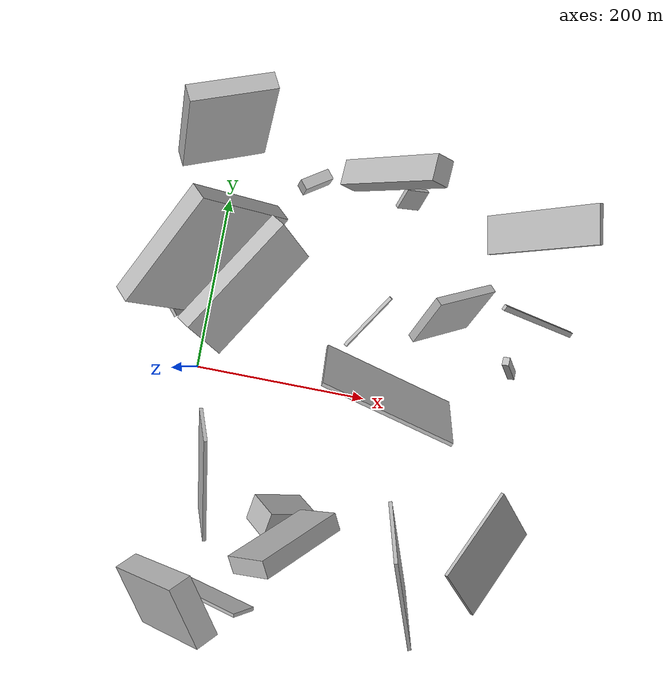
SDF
<sdf version="1.6">
 <world name="default">
  <scene>
   <sky><clouds><speed>12</speed></clouds></sky>
   <ambient>0.4 0.4 0.4 1</ambient>
   <background>0.7 0.7 0.7 1</background>
   <shadows>1</shadows>
  </scene>
  <gravity>0 0 -9.8066</gravity>
  <magnetic_field>6e-06 2.3e-05 -4.2e-05</magnetic_field>
  <physics default="0" name="default_physics" type="ode">
   <ode>
    <solver>
     <type>quick</type>
     <iters>10</iters>
     <sor>1.0</sor>
     <use_dynamic_moi_rescaling>0</use_dynamic_moi_rescaling>
    </solver>
    <constraints>
     <cfm>0</cfm>
     <erp>0.2</erp>
     <contact_max_correcting_vel>100</contact_max_correcting_vel>
     <contact_surface_layer>0.001</contact_surface_layer>
    </constraints>
   </ode>
   <max_step_size>0.004</max_step_size>
   <real_time_factor>1</real_time_factor>
   <real_time_update_rate>250</real_time_update_rate>
  </physics>
  <light name="sun" type="directional">
   <pose>0 0 10 0 0 0</pose>
   <diffuse>0.8 0.8 0.8 1</diffuse>
   <specular>0.2 0.2 0.2 1</specular>
   <attenuation>
    <range>1000</range>
    <constant>0.9</constant>
    <linear>0.01</linear>
    <quadratic>0.001</quadratic>
   </attenuation>
   <direction>-0.5 0.1 -0.9</direction>
  </light>
  <model name="building_1">
   <static>0</static>
   <pose>393.5238201656519 -93.99431812787392 53.458603788070654 1.0447301016938364 -0.7299674863057137 -0.10625331334162981</pose>
   <link name="link">
    <gravity>0</gravity>
    <pose>0 0 58.0 0 0 0</pose>
    <collision name="collision"><geometry><box><size>4 82 116</size></box></geometry></collision>
    <visual name="visual">
     <cast_shadows>0</cast_shadows>
     <geometry><box><size>4 82 116</size></box></geometry>
     <material>
      <script>
       <uri>model://HANNAS_wall/materials/scripts</uri>
       <uri>model://HANNAS_wall/materials/textures</uri>
       <name>vrc/HANNAS_wall</name>
      </script>
     </material>
    </visual>
   </link>
  </model>
  <model name="building_2">
   <static>0</static>
   <pose>177.61893647534248 -139.4808100626206 78.51546065734176 0.8027093278689477 0.24067545804543655 -1.1084365847787494</pose>
   <link name="link">
    <gravity>0</gravity>
    <pose>0 0 57.0 0 0 0</pose>
    <collision name="collision"><geometry><box><size>21 56 114</size></box></geometry></collision>
    <visual name="visual">
     <cast_shadows>0</cast_shadows>
     <geometry><box><size>21 56 114</size></box></geometry>
     <material>
      <script>
       <uri>model://HANNAS_wall/materials/scripts</uri>
       <uri>model://HANNAS_wall/materials/textures</uri>
       <name>vrc/HANNAS_wall</name>
      </script>
     </material>
    </visual>
   </link>
  </model>
  <model name="building_3">
   <static>0</static>
   <pose>61.09733466161079 88.85671302887441 53.08428835520806 -0.05405717945496297 -0.3993710386605618 -0.5282730979869001</pose>
   <link name="link">
    <gravity>0</gravity>
    <pose>0 0 46.0 0 0 0</pose>
    <collision name="collision"><geometry><box><size>18 150 92</size></box></geometry></collision>
    <visual name="visual">
     <cast_shadows>0</cast_shadows>
     <geometry><box><size>18 150 92</size></box></geometry>
     <material>
      <script>
       <uri>model://HANNAS_wall/materials/scripts</uri>
       <uri>model://HANNAS_wall/materials/textures</uri>
       <name>vrc/HANNAS_wall</name>
      </script>
     </material>
    </visual>
   </link>
  </model>
  <model name="building_4">
   <static>0</static>
   <pose>359.36402718857005 72.83760184738425 22.97564581771593 1.1834906884823053 -0.35020370209648016 0.07823638142976283</pose>
   <link name="link">
    <gravity>0</gravity>
    <pose>0 0 5.0 0 0 0</pose>
    <collision name="collision"><geometry><box><size>8 41 10</size></box></geometry></collision>
    <visual name="visual">
     <cast_shadows>0</cast_shadows>
     <geometry><box><size>8 41 10</size></box></geometry>
     <material>
      <script>
       <uri>model://HANNAS_wall/materials/scripts</uri>
       <uri>model://HANNAS_wall/materials/textures</uri>
       <name>vrc/HANNAS_wall</name>
      </script>
     </material>
    </visual>
   </link>
  </model>
  <model name="building_5">
   <static>0</static>
   <pose>131.06783888025274 -163.36181456635404 42.084050973603084 1.1671608078660738 -0.6442149230083735 -3.056047900271807</pose>
   <link name="link">
    <gravity>0</gravity>
    <pose>0 0 16.0 0 0 0</pose>
    <collision name="collision"><geometry><box><size>62 42 32</size></box></geometry></collision>
    <visual name="visual">
     <cast_shadows>0</cast_shadows>
     <geometry><box><size>62 42 32</size></box></geometry>
     <material>
      <script>
       <uri>model://HANNAS_wall/materials/scripts</uri>
       <uri>model://HANNAS_wall/materials/textures</uri>
       <name>vrc/HANNAS_wall</name>
      </script>
     </material>
    </visual>
   </link>
  </model>
  <model name="building_6">
   <static>0</static>
   <pose>33.29285495676003 -98.70770049676675 79.09219236129624 0.6743732023531644 0.20492002614628638 0.24262603572285132</pose>
   <link name="link">
    <gravity>0</gravity>
    <pose>0 0 27.0 0 0 0</pose>
    <collision name="collision"><geometry><box><size>4 150 54</size></box></geometry></collision>
    <visual name="visual">
     <cast_shadows>0</cast_shadows>
     <geometry><box><size>4 150 54</size></box></geometry>
     <material>
      <script>
       <uri>model://HANNAS_wall/materials/scripts</uri>
       <uri>model://HANNAS_wall/materials/textures</uri>
       <name>vrc/HANNAS_wall</name>
      </script>
     </material>
    </visual>
   </link>
  </model>
  <model name="building_7">
   <static>0</static>
   <pose>-47.69244283869683 81.45219014418502 24.970885549038904 1.1037709544551486 -0.08679318192986515 2.2447337656884567</pose>
   <link name="link">
    <gravity>0</gravity>
    <pose>0 0 2.0 0 0 0</pose>
    <collision name="collision"><geometry><box><size>63 30 4</size></box></geometry></collision>
    <visual name="visual">
     <cast_shadows>0</cast_shadows>
     <geometry><box><size>63 30 4</size></box></geometry>
     <material>
      <script>
       <uri>model://HANNAS_wall/materials/scripts</uri>
       <uri>model://HANNAS_wall/materials/textures</uri>
       <name>vrc/HANNAS_wall</name>
      </script>
     </material>
    </visual>
   </link>
  </model>
  <model name="building_8">
   <static>0</static>
   <pose>-12.022587815919202 134.08475868832863 95.88349849979352 1.0562672100228796 -0.40784770964066724 1.0384985679055254</pose>
   <link name="link">
    <gravity>0</gravity>
    <pose>0 0 11.5 0 0 0</pose>
    <collision name="collision"><geometry><box><size>150 135 23</size></box></geometry></collision>
    <visual name="visual">
     <cast_shadows>0</cast_shadows>
     <geometry><box><size>150 135 23</size></box></geometry>
     <material>
      <script>
       <uri>model://HANNAS_wall/materials/scripts</uri>
       <uri>model://HANNAS_wall/materials/textures</uri>
       <name>vrc/HANNAS_wall</name>
      </script>
     </material>
    </visual>
   </link>
  </model>
  <model name="building_9">
   <static>0</static>
   <pose>78.14960656894606 -240.44404828380712 75.1698702132758 0.29804400937771536 -0.8594099150068708 0.012102523835032922</pose>
   <link name="link">
    <gravity>0</gravity>
    <pose>0 0 13.0 0 0 0</pose>
    <collision name="collision"><geometry><box><size>147 4 26</size></box></geometry></collision>
    <visual name="visual">
     <cast_shadows>0</cast_shadows>
     <geometry><box><size>147 4 26</size></box></geometry>
     <material>
      <script>
       <uri>model://HANNAS_wall/materials/scripts</uri>
       <uri>model://HANNAS_wall/materials/textures</uri>
       <name>vrc/HANNAS_wall</name>
      </script>
     </material>
    </visual>
   </link>
  </model>
  <model name="building_10">
   <static>0</static>
   <pose>266.6748798771041 -149.53081683576752 97.49238620556659 0.7105948405681306 -0.044421995844935204 0.3164272505038065</pose>
   <link name="link">
    <gravity>0</gravity>
    <pose>0 0 42.5 0 0 0</pose>
    <collision name="collision"><geometry><box><size>4 148 85</size></box></geometry></collision>
    <visual name="visual">
     <cast_shadows>0</cast_shadows>
     <geometry><box><size>4 148 85</size></box></geometry>
     <material>
      <script>
       <uri>model://HANNAS_wall/materials/scripts</uri>
       <uri>model://HANNAS_wall/materials/textures</uri>
       <name>vrc/HANNAS_wall</name>
      </script>
     </material>
    </visual>
   </link>
  </model>
  <model name="building_11">
   <static>0</static>
   <pose>220.91431172988422 34.166092359952614 94.23166458552684 0.15838265170610463 -0.36681517693569465 1.2653875054369426</pose>
   <link name="link">
    <gravity>0</gravity>
    <pose>0 0 51.5 0 0 0</pose>
    <collision name="collision"><geometry><box><size>4 150 103</size></box></geometry></collision>
    <visual name="visual">
     <cast_shadows>0</cast_shadows>
     <geometry><box><size>4 150 103</size></box></geometry>
     <material>
      <script>
       <uri>model://HANNAS_wall/materials/scripts</uri>
       <uri>model://HANNAS_wall/materials/textures</uri>
       <name>vrc/HANNAS_wall</name>
      </script>
     </material>
    </visual>
   </link>
  </model>
  <model name="building_12">
   <static>0</static>
   <pose>-6.0167386128956295 -253.02388484397622 79.34750127782357 0.5609449659192545 -0.31090357611056046 2.1364121168053765</pose>
   <link name="link">
    <gravity>0</gravity>
    <pose>0 0 63.5 0 0 0</pose>
    <collision name="collision"><geometry><box><size>74 27 127</size></box></geometry></collision>
    <visual name="visual">
     <cast_shadows>0</cast_shadows>
     <geometry><box><size>74 27 127</size></box></geometry>
     <material>
      <script>
       <uri>model://HANNAS_wall/materials/scripts</uri>
       <uri>model://HANNAS_wall/materials/textures</uri>
       <name>vrc/HANNAS_wall</name>
      </script>
     </material>
    </visual>
   </link>
  </model>
  <model name="building_13">
   <static>0</static>
   <pose>111.61209176740337 243.6861339044367 45.96788274029655 1.1752169237688295 -0.1146356751753406 -0.8826581333544985</pose>
   <link name="link">
    <gravity>0</gravity>
    <pose>0 0 18.0 0 0 0</pose>
    <collision name="collision"><geometry><box><size>13 16 36</size></box></geometry></collision>
    <visual name="visual">
     <cast_shadows>0</cast_shadows>
     <geometry><box><size>13 16 36</size></box></geometry>
     <material>
      <script>
       <uri>model://HANNAS_wall/materials/scripts</uri>
       <uri>model://HANNAS_wall/materials/textures</uri>
       <name>vrc/HANNAS_wall</name>
      </script>
     </material>
    </visual>
   </link>
  </model>
  <model name="building_14">
   <static>0</static>
   <pose>307.9019762162076 130.35409805538052 52.92466954234452 -0.5305477056759964 -0.8074779929885805 1.142082010558406</pose>
   <link name="link">
    <gravity>0</gravity>
    <pose>0 0 41.5 0 0 0</pose>
    <collision name="collision"><geometry><box><size>69 10 83</size></box></geometry></collision>
    <visual name="visual">
     <cast_shadows>0</cast_shadows>
     <geometry><box><size>69 10 83</size></box></geometry>
     <material>
      <script>
       <uri>model://HANNAS_wall/materials/scripts</uri>
       <uri>model://HANNAS_wall/materials/textures</uri>
       <name>vrc/HANNAS_wall</name>
      </script>
     </material>
    </visual>
   </link>
  </model>
  <model name="building_15">
   <static>0</static>
   <pose>186.03160247693896 270.8749424601276 82.49010622179969 1.410699909408386 -0.8435256489714927 0.06987336343369885</pose>
   <link name="link">
    <gravity>0</gravity>
    <pose>0 0 15.0 0 0 0</pose>
    <collision name="collision"><geometry><box><size>150 24 30</size></box></geometry></collision>
    <visual name="visual">
     <cast_shadows>0</cast_shadows>
     <geometry><box><size>150 24 30</size></box></geometry>
     <material>
      <script>
       <uri>model://HANNAS_wall/materials/scripts</uri>
       <uri>model://HANNAS_wall/materials/textures</uri>
       <name>vrc/HANNAS_wall</name>
      </script>
     </material>
    </visual>
   </link>
  </model>
  <model name="building_16">
   <static>0</static>
   <pose>-9.251248616492427 243.09972353796763 80.1683900422626 -0.2902183631479413 -0.2957474366559945 -1.0766243618347835</pose>
   <link name="link">
    <gravity>0</gravity>
    <pose>0 0 64.5 0 0 0</pose>
    <collision name="collision"><geometry><box><size>20 94 129</size></box></geometry></collision>
    <visual name="visual">
     <cast_shadows>0</cast_shadows>
     <geometry><box><size>20 94 129</size></box></geometry>
     <material>
      <script>
       <uri>model://HANNAS_wall/materials/scripts</uri>
       <uri>model://HANNAS_wall/materials/textures</uri>
       <name>vrc/HANNAS_wall</name>
      </script>
     </material>
    </visual>
   </link>
  </model>
  <model name="building_17">
   <static>0</static>
   <pose>228.2174649425224 282.0369618805714 20.781570125522258 1.9923719760635819 -0.165880395274957 -1.5246964099940055</pose>
   <link name="link">
    <gravity>0</gravity>
    <pose>0 0 6.5 0 0 0</pose>
    <collision name="collision"><geometry><box><size>14 25 13</size></box></geometry></collision>
    <visual name="visual">
     <cast_shadows>0</cast_shadows>
     <geometry><box><size>14 25 13</size></box></geometry>
     <material>
      <script>
       <uri>model://HANNAS_wall/materials/scripts</uri>
       <uri>model://HANNAS_wall/materials/textures</uri>
       <name>vrc/HANNAS_wall</name>
      </script>
     </material>
    </visual>
   </link>
  </model>
  <model name="building_18">
   <static>0</static>
   <pose>189.78864173560362 89.54692962135407 10.112696725648554 2.667032612360967 -1.2392587748621346 3.0182146272513495</pose>
   <link name="link">
    <gravity>0</gravity>
    <pose>0 0 2.0 0 0 0</pose>
    <collision name="collision"><geometry><box><size>4 78 4</size></box></geometry></collision>
    <visual name="visual">
     <cast_shadows>0</cast_shadows>
     <geometry><box><size>4 78 4</size></box></geometry>
     <material>
      <script>
       <uri>model://HANNAS_wall/materials/scripts</uri>
       <uri>model://HANNAS_wall/materials/textures</uri>
       <name>vrc/HANNAS_wall</name>
      </script>
     </material>
    </visual>
   </link>
  </model>
  <model name="building_19">
   <static>0</static>
   <pose>378.1614173197331 124.89239049428376 67.33393567015098 2.74483644592833 -0.8792798870046358 3.05115898005501</pose>
   <link name="link">
    <gravity>0</gravity>
    <pose>0 0 2.0 0 0 0</pose>
    <collision name="collision"><geometry><box><size>150 6 4</size></box></geometry></collision>
    <visual name="visual">
     <cast_shadows>0</cast_shadows>
     <geometry><box><size>150 6 4</size></box></geometry>
     <material>
      <script>
       <uri>model://HANNAS_wall/materials/scripts</uri>
       <uri>model://HANNAS_wall/materials/textures</uri>
       <name>vrc/HANNAS_wall</name>
      </script>
     </material>
    </visual>
   </link>
  </model>
  <model name="building_20">
   <static>0</static>
   <pose>212.28817293495 237.69949675458392 32.50323120405482 2.3466665234263573 -0.6299609553414852 -2.9669956113750127</pose>
   <link name="link">
    <gravity>0</gravity>
    <pose>0 0 2.5 0 0 0</pose>
    <collision name="collision"><geometry><box><size>31 27 5</size></box></geometry></collision>
    <visual name="visual">
     <cast_shadows>0</cast_shadows>
     <geometry><box><size>31 27 5</size></box></geometry>
     <material>
      <script>
       <uri>model://HANNAS_wall/materials/scripts</uri>
       <uri>model://HANNAS_wall/materials/textures</uri>
       <name>vrc/HANNAS_wall</name>
      </script>
     </material>
    </visual>
   </link>
  </model>
  <model name="building_21">
   <static>0</static>
   <pose>358.5828301925905 226.75099873702237 77.37697503540181 2.3932434752977834 0.019876216665435528 1.7596672358881273</pose>
   <link name="link">
    <gravity>0</gravity>
    <pose>0 0 3.0 0 0 0</pose>
    <collision name="collision"><geometry><box><size>45 150 6</size></box></geometry></collision>
    <visual name="visual">
     <cast_shadows>0</cast_shadows>
     <geometry><box><size>45 150 6</size></box></geometry>
     <material>
      <script>
       <uri>model://HANNAS_wall/materials/scripts</uri>
       <uri>model://HANNAS_wall/materials/textures</uri>
       <name>vrc/HANNAS_wall</name>
      </script>
     </material>
    </visual>
   </link>
  </model>
 </world>
</sdf>
